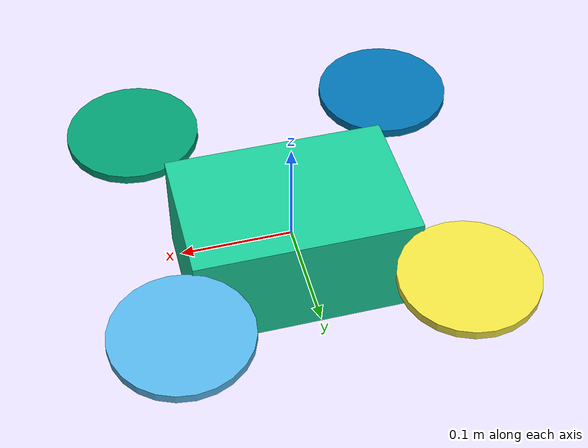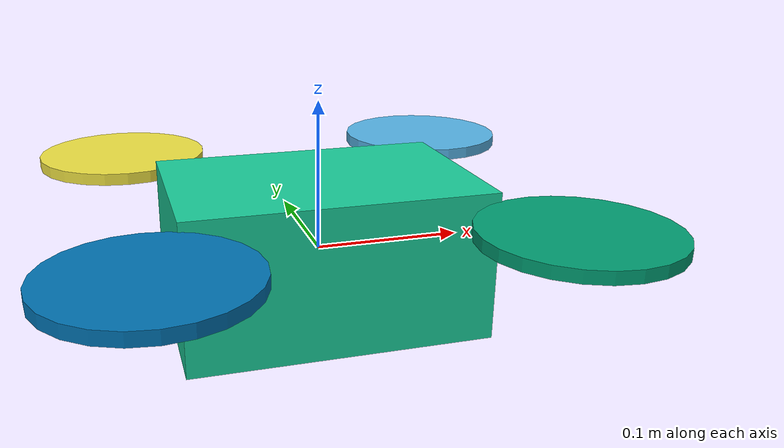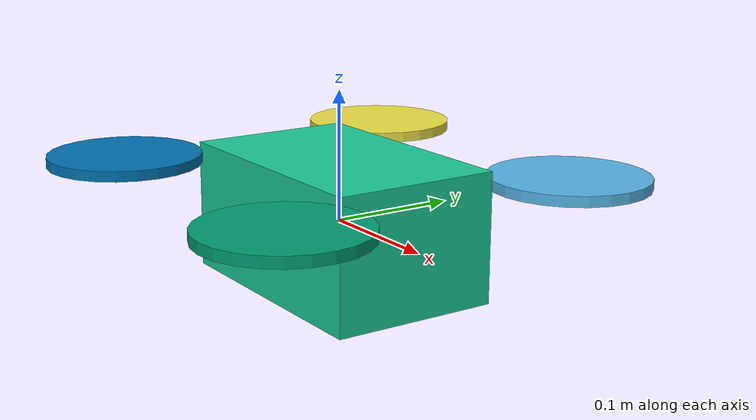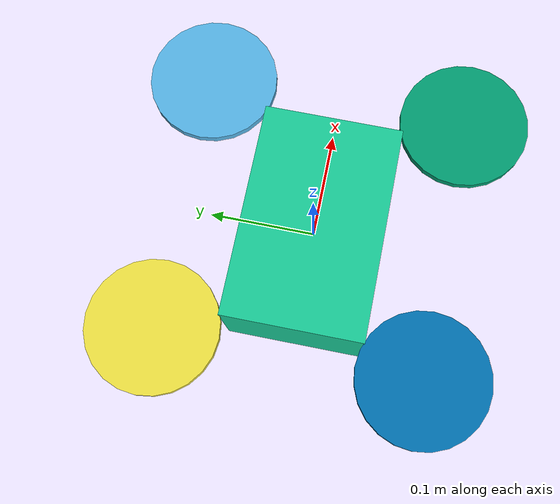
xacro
<?xml version="1.0"?>
<robot xmlns:xacro="http://www.ros.org/wiki/xacro" name="aperturenav_drone">
 <xacro:property name="mass" value="1.0"/>
 <link name="base_link"><inertial><mass value="${mass}"/><inertia ixx="0.012" iyy="0.012" izz="0.022" ixy="0" ixz="0" iyz="0"/></inertial><visual><geometry><box size="0.20 0.13 0.1"/></geometry><material name="teal"><color rgba="0.1 0.8 0.6 1"/></material></visual><collision><geometry><box size="0.36 0.36 0.16"/></geometry></collision></link>
 <xacro:macro name="rotor" params="id x y"><link name="rotor_${id}"><visual><geometry><cylinder radius="0.06" length="0.008"/></geometry></visual></link><joint name="rotor_${id}_joint" type="fixed"><parent link="base_link"/><child link="rotor_${id}"/><origin xyz="${x} ${y} 0.04"/></joint></xacro:macro>
 <xacro:rotor id="1" x="0.12" y="0.12"/><xacro:rotor id="2" x="0.12" y="-0.12"/><xacro:rotor id="3" x="-0.12" y="0.12"/><xacro:rotor id="4" x="-0.12" y="-0.12"/>
 <link name="camera_link"/><joint name="camera_joint" type="fixed"><parent link="base_link"/><child link="camera_link"/><origin xyz="0.18 0 0.03"/></joint>
 <link name="camera_optical_frame"/><joint name="optical_joint" type="fixed"><parent link="camera_link"/><child link="camera_optical_frame"/><origin rpy="${-pi/2} 0 ${-pi/2}"/></joint>
 <link name="depth_camera_link"/><joint name="depth_joint" type="fixed"><parent link="camera_link"/><child link="depth_camera_link"/></joint>
 <link name="depth_camera_optical_frame"/><joint name="depth_optical_joint" type="fixed"><parent link="camera_optical_frame"/><child link="depth_camera_optical_frame"/></joint>
 <link name="imu_link"/><joint name="imu_joint" type="fixed"><parent link="base_link"/><child link="imu_link"/></joint>
</robot>
